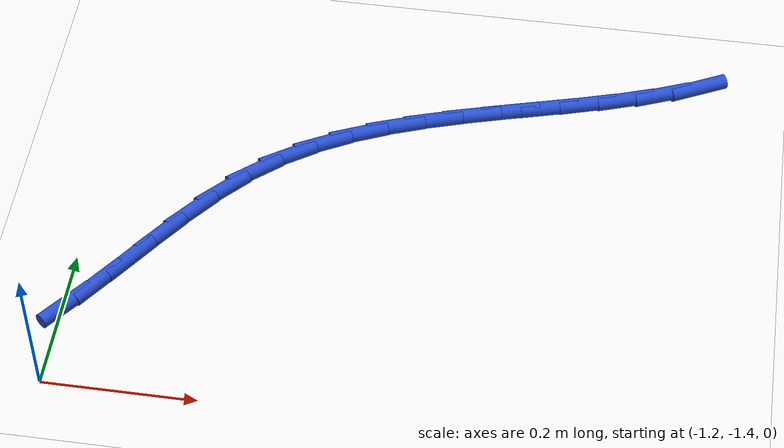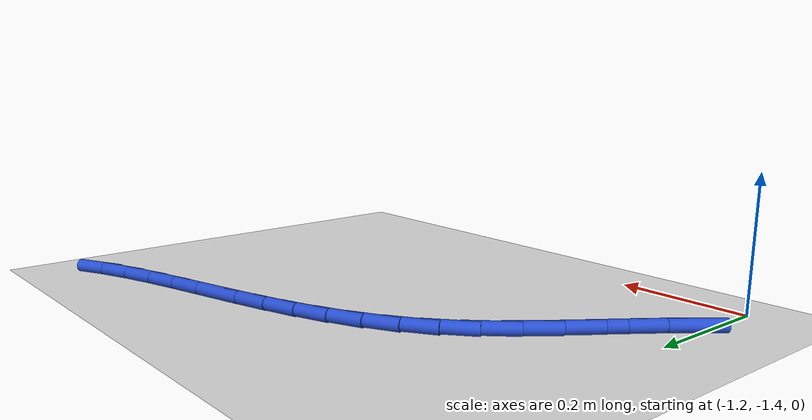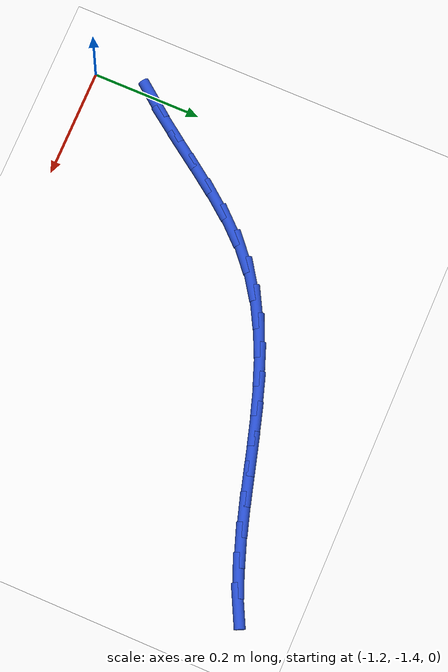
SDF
<sdf version="1.6">
 <world name="default">
  <model name="ground_plane">
   <static>1</static>
   <link name="link">
    <collision name="collision">
     <geometry><plane><normal>0 0 1</normal><size>100 100</size></plane></geometry>
     <surface><friction><ode><mu>100</mu><mu2>50</mu2></ode></friction></surface>
    </collision>
    <visual name="visual">
     <cast_shadows>0</cast_shadows>
     <geometry><plane><normal>0 0 1</normal><size>100 100</size></plane></geometry>
     <material>
      <script><uri>file://media/materials/scripts/gazebo.material</uri><name>Gazebo/WhiteGlow</name></script>
     </material>
    </visual>
   </link>
  </model>
  <model name="line">
   <link name="link_114">
    <pose>-1.1942112256784991 -1.283669060293638 0.01 0 1.57 0.9062099171726479</pose>
    <collision name="collision">
     <geometry><cylinder><radius>0.01</radius><length>0.08</length></cylinder></geometry>
    </collision>
    <visual name="visual">
     <material>
      <script><name>Gazebo/Blue</name><uri>file://media/materials/scripts/gazebo.material</uri></script>
     </material>
     <geometry><cylinder><radius>0.01</radius><length>0.08</length></cylinder></geometry>
    </visual>
   </link>
   <link name="link_115">
    <pose>-1.161700168411772 -1.2421733629020215 0.01 0 1.57 0.9481535372729785</pose>
    <collision name="collision">
     <geometry><cylinder><radius>0.01</radius><length>0.08</length></cylinder></geometry>
    </collision>
    <visual name="visual">
     <material>
      <script><name>Gazebo/Blue</name><uri>file://media/materials/scripts/gazebo.material</uri></script>
     </material>
     <geometry><cylinder><radius>0.01</radius><length>0.08</length></cylinder></geometry>
    </visual>
   </link>
   <link name="link_116">
    <pose>-1.1301916004676593 -1.198283835119234 0.01 0 1.57 0.9596398264374049</pose>
    <collision name="collision">
     <geometry><cylinder><radius>0.01</radius><length>0.08</length></cylinder></geometry>
    </collision>
    <visual name="visual">
     <material>
      <script><name>Gazebo/Blue</name><uri>file://media/materials/scripts/gazebo.material</uri></script>
     </material>
     <geometry><cylinder><radius>0.01</radius><length>0.08</length></cylinder></geometry>
    </visual>
   </link>
   <link name="link_117">
    <pose>-1.0988162534864665 -1.1535029616165078 0.01 0 1.57 0.9421784810162387</pose>
    <collision name="collision">
     <geometry><cylinder><radius>0.01</radius><length>0.08</length></cylinder></geometry>
    </collision>
    <visual name="visual">
     <material>
      <script><name>Gazebo/Blue</name><uri>file://media/materials/scripts/gazebo.material</uri></script>
     </material>
     <geometry><cylinder><radius>0.01</radius><length>0.08</length></cylinder></geometry>
    </visual>
   </link>
   <link name="link_118">
    <pose>-1.0667048591085 -1.109333227065073 0.01 0 1.57 0.8950149397296346</pose>
    <collision name="collision">
     <geometry><cylinder><radius>0.01</radius><length>0.08</length></cylinder></geometry>
    </collision>
    <visual name="visual">
     <material>
      <script><name>Gazebo/Blue</name><uri>file://media/materials/scripts/gazebo.material</uri></script>
     </material>
     <geometry><cylinder><radius>0.01</radius><length>0.08</length></cylinder></geometry>
    </visual>
   </link>
   <link name="link_119">
    <pose>-1.032988148974066 -1.0672771161361625 0.01 0 1.57 0.8155199532656916</pose>
    <collision name="collision">
     <geometry><cylinder><radius>0.01</radius><length>0.08</length></cylinder></geometry>
    </collision>
    <visual name="visual">
     <material>
      <script><name>Gazebo/Blue</name><uri>file://media/materials/scripts/gazebo.material</uri></script>
     </material>
     <geometry><cylinder><radius>0.01</radius><length>0.08</length></cylinder></geometry>
    </visual>
   </link>
   <link name="link_120">
    <pose>-0.9967968547234697 -1.028837113501006 0.01 0 1.57 0.7036153603843731</pose>
    <collision name="collision">
     <geometry><cylinder><radius>0.01</radius><length>0.08</length></cylinder></geometry>
    </collision>
    <visual name="visual">
     <material>
      <script><name>Gazebo/Blue</name><uri>file://media/materials/scripts/gazebo.material</uri></script>
     </material>
     <geometry><cylinder><radius>0.01</radius><length>0.08</length></cylinder></geometry>
    </visual>
   </link>
   <link name="link_121">
    <pose>-0.9573511234779983 -0.9953679011710252 0.01 0 1.57 0.5890376999059191</pose>
    <collision name="collision">
     <geometry><cylinder><radius>0.01</radius><length>0.08</length></cylinder></geometry>
    </collision>
    <visual name="visual">
     <material>
      <script><name>Gazebo/Blue</name><uri>file://media/materials/scripts/gazebo.material</uri></script>
     </material>
     <geometry><cylinder><radius>0.01</radius><length>0.08</length></cylinder></geometry>
    </visual>
   </link>
   <link name="link_122">
    <pose>-0.9146931061791395 -0.9668653992333249 0.01 0 1.57 0.49108400478622977</pose>
    <collision name="collision">
     <geometry><cylinder><radius>0.01</radius><length>0.08</length></cylinder></geometry>
    </collision>
    <visual name="visual">
     <material>
      <script><name>Gazebo/Blue</name><uri>file://media/materials/scripts/gazebo.material</uri></script>
     </material>
     <geometry><cylinder><radius>0.01</radius><length>0.08</length></cylinder></geometry>
    </visual>
   </link>
   <link name="link_123">
    <pose>-0.8693074915043629 -0.9425940184912914 0.01 0 1.57 0.4114813450683411</pose>
    <collision name="collision">
     <geometry><cylinder><radius>0.01</radius><length>0.08</length></cylinder></geometry>
    </collision>
    <visual name="visual">
     <material>
      <script><name>Gazebo/Blue</name><uri>file://media/materials/scripts/gazebo.material</uri></script>
     </material>
     <geometry><cylinder><radius>0.01</radius><length>0.08</length></cylinder></geometry>
    </visual>
   </link>
   <link name="link_124">
    <pose>-0.8216832421869876 -0.9218111047880225 0.01 0 1.57 0.35025398830736354</pose>
    <collision name="collision">
     <geometry><cylinder><radius>0.01</radius><length>0.08</length></cylinder></geometry>
    </collision>
    <visual name="visual">
     <material>
      <script><name>Gazebo/Blue</name><uri>file://media/materials/scripts/gazebo.material</uri></script>
     </material>
     <geometry><cylinder><radius>0.01</radius><length>0.08</length></cylinder></geometry>
    </visual>
   </link>
   <link name="link_125">
    <pose>-0.772309320960333 -0.9037740039666159 0.01 0 1.57 0.3066699019196907</pose>
    <collision name="collision">
     <geometry><cylinder><radius>0.01</radius><length>0.08</length></cylinder></geometry>
    </collision>
    <visual name="visual">
     <material>
      <script><name>Gazebo/Blue</name><uri>file://media/materials/scripts/gazebo.material</uri></script>
     </material>
     <geometry><cylinder><radius>0.01</radius><length>0.08</length></cylinder></geometry>
    </visual>
   </link>
   <link name="link_126">
    <pose>-0.7216746905577157 -0.8877400618701685 0.01 0 1.57 0.27984388508660674</pose>
    <collision name="collision">
     <geometry><cylinder><radius>0.01</radius><length>0.08</length></cylinder></geometry>
    </collision>
    <visual name="visual">
     <material>
      <script><name>Gazebo/Blue</name><uri>file://media/materials/scripts/gazebo.material</uri></script>
     </material>
     <geometry><cylinder><radius>0.01</radius><length>0.08</length></cylinder></geometry>
    </visual>
   </link>
   <link name="link_127">
    <pose>-0.6702683137124559 -0.872966624341778 0.01 0 1.57 0.26910471775081174</pose>
    <collision name="collision">
     <geometry><cylinder><radius>0.01</radius><length>0.08</length></cylinder></geometry>
    </collision>
    <visual name="visual">
     <material>
      <script><name>Gazebo/Blue</name><uri>file://media/materials/scripts/gazebo.material</uri></script>
     </material>
     <geometry><cylinder><radius>0.01</radius><length>0.08</length></cylinder></geometry>
    </visual>
   </link>
   <link name="link_128">
    <pose>-0.6185791531578702 -0.8587110372245412 0.01 0 1.57 0.2741818926454334</pose>
    <collision name="collision">
     <geometry><cylinder><radius>0.01</radius><length>0.08</length></cylinder></geometry>
    </collision>
    <visual name="visual">
     <material>
      <script><name>Gazebo/Blue</name><uri>file://media/materials/scripts/gazebo.material</uri></script>
     </material>
     <geometry><cylinder><radius>0.01</radius><length>0.08</length></cylinder></geometry>
    </visual>
   </link>
   <link name="link_129">
    <pose>-0.5670961716272779 -0.8442306463615561 0.01 0 1.57 0.2952728795190369</pose>
    <collision name="collision">
     <geometry><cylinder><radius>0.01</radius><length>0.08</length></cylinder></geometry>
    </collision>
    <visual name="visual">
     <material>
      <script><name>Gazebo/Blue</name><uri>file://media/materials/scripts/gazebo.material</uri></script>
     </material>
     <geometry><cylinder><radius>0.01</radius><length>0.08</length></cylinder></geometry>
    </visual>
   </link>
   <link name="link_130">
    <pose>-0.5163083318539983 -0.82878279759592 0.01 0 1.57 0.3330181174408382</pose>
    <collision name="collision">
     <geometry><cylinder><radius>0.01</radius><length>0.08</length></cylinder></geometry>
    </collision>
    <visual name="visual">
     <material>
      <script><name>Gazebo/Blue</name><uri>file://media/materials/scripts/gazebo.material</uri></script>
     </material>
     <geometry><cylinder><radius>0.01</radius><length>0.08</length></cylinder></geometry>
    </visual>
   </link>
   <link name="link_131">
    <pose>-0.466704596571348 -0.8116248367707298 0.01 0 1.57 0.3883674458647797</pose>
    <collision name="collision">
     <geometry><cylinder><radius>0.01</radius><length>0.08</length></cylinder></geometry>
    </collision>
    <visual name="visual">
     <material>
      <script><name>Gazebo/Blue</name><uri>file://media/materials/scripts/gazebo.material</uri></script>
     </material>
     <geometry><cylinder><radius>0.01</radius><length>0.08</length></cylinder></geometry>
    </visual>
   </link>
   <link name="link_132">
    <pose>-0.41877392851264716 -0.7920141097290836 0.01 0 1.57 0.46228029666183434</pose>
    <collision name="collision">
     <geometry><cylinder><radius>0.01</radius><length>0.08</length></cylinder></geometry>
    </collision>
    <visual name="visual">
     <material>
      <script><name>Gazebo/Blue</name><uri>file://media/materials/scripts/gazebo.material</uri></script>
     </material>
     <geometry><cylinder><radius>0.01</radius><length>0.08</length></cylinder></geometry>
    </visual>
   </link>
  </model>
 </world>
</sdf>
